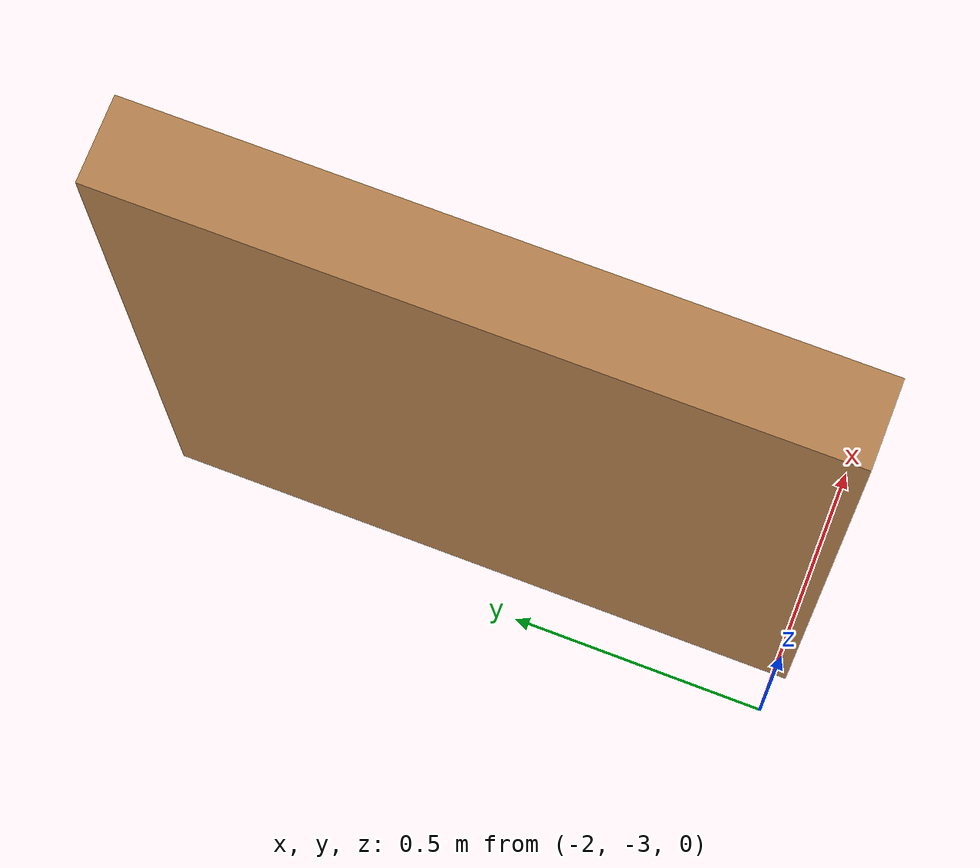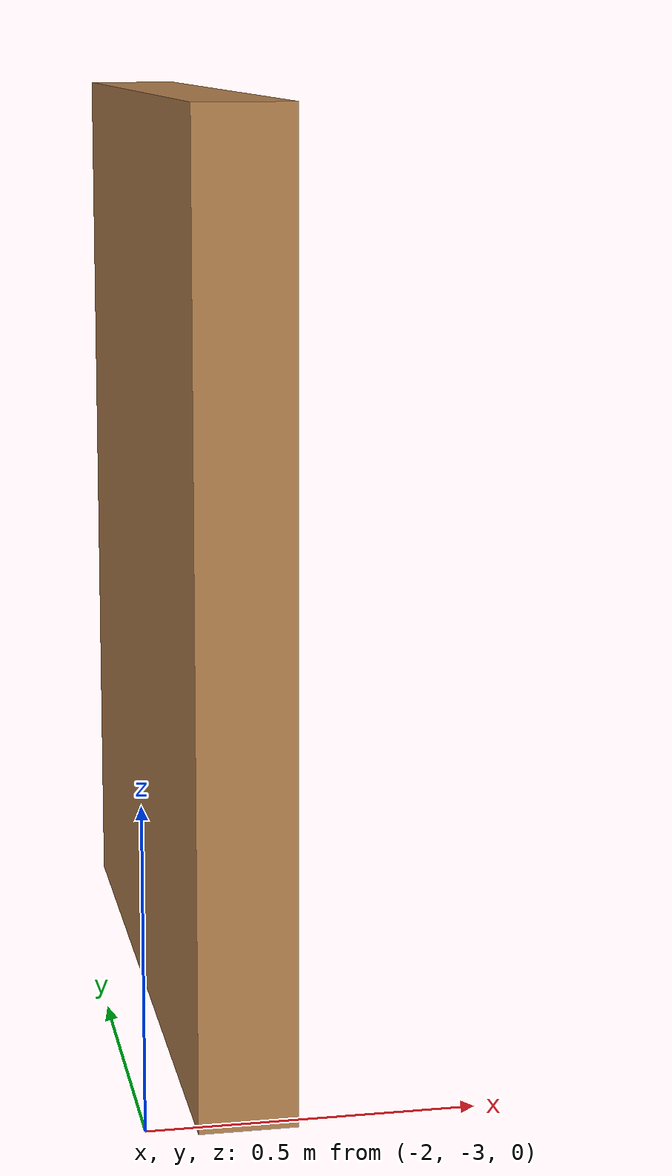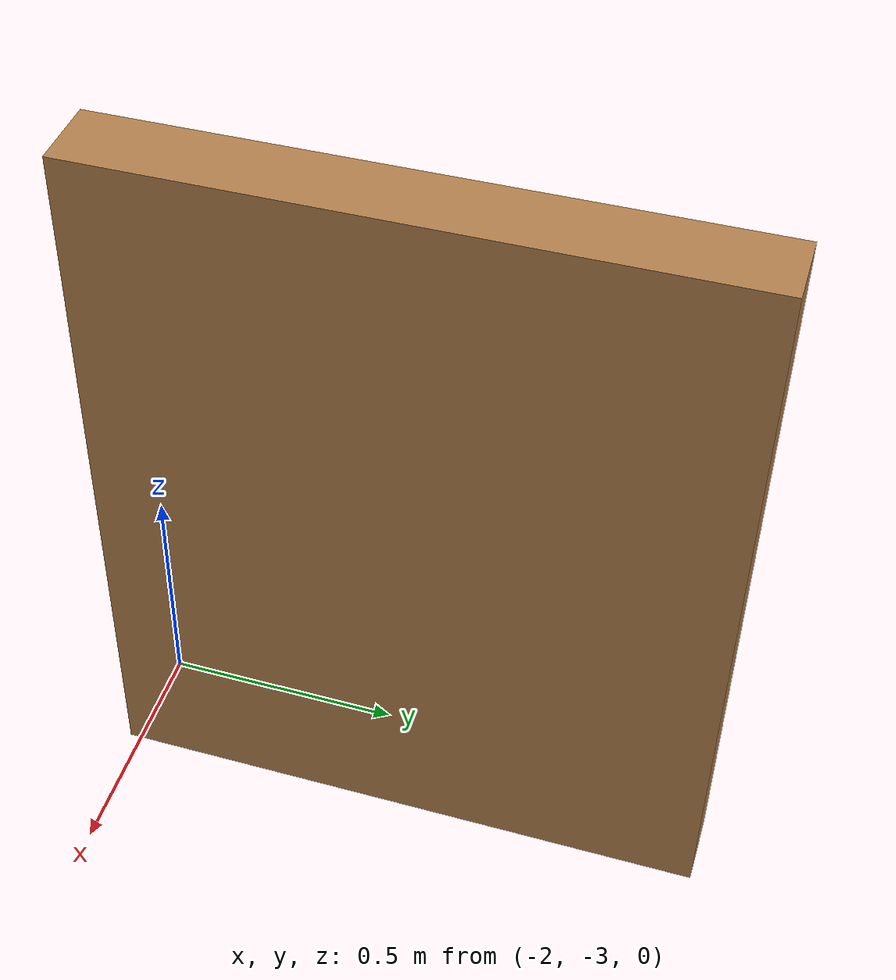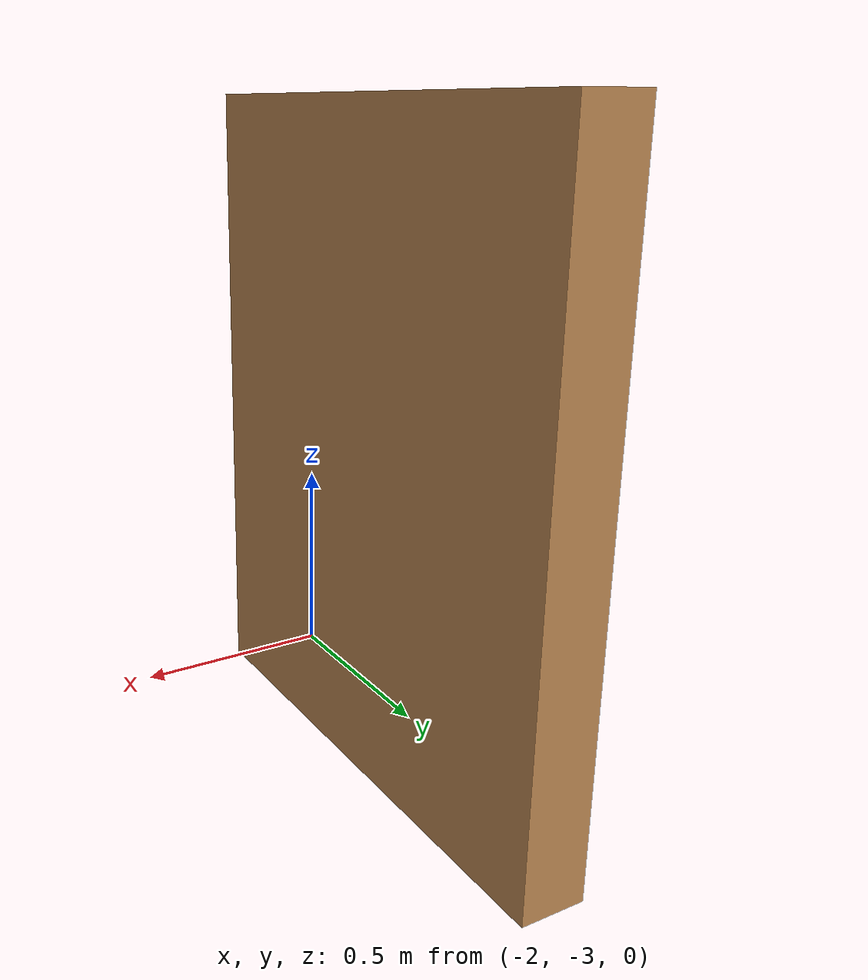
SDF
<?xml version='1.0'?>
<sdf version='1.7'>
  <model name='inner_wall_1250'>
    <pose>-0.9625 -1.5125 0 0 -0 0</pose>
    <link name='Wall_8'>
      <collision name='Wall_8_Collision'>
        <geometry>
          <box>
            <size>1.25 0.15 1.5</size>
          </box>
        </geometry>
        <pose>0 0 0.75 0 -0 0</pose>
      </collision>
      <visual name='Wall_8_Visual'>
        <pose>0 0 0.75 0 -0 0</pose>
        <geometry>
          <box>
            <size>1.25 0.15 1.5</size>
          </box>
        </geometry>
        <material>
          <script>
            <uri>file://media/materials/scripts/gazebo.material</uri>
            <name>Gazebo/Wood</name>
          </script>
          <ambient>1 1 1 1</ambient>
        </material>
        <meta>
          <layer>0</layer>
        </meta>
      </visual>
      <pose>-0.8875 -0.8875 0 0 -0 1.5708</pose>
    </link>
    <static>1</static>
  </model>
</sdf>
